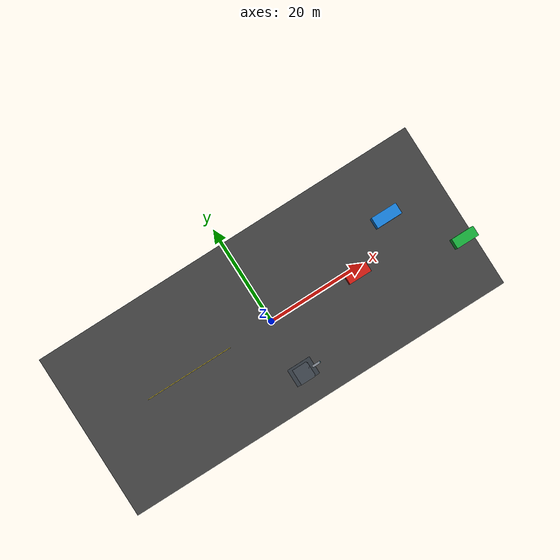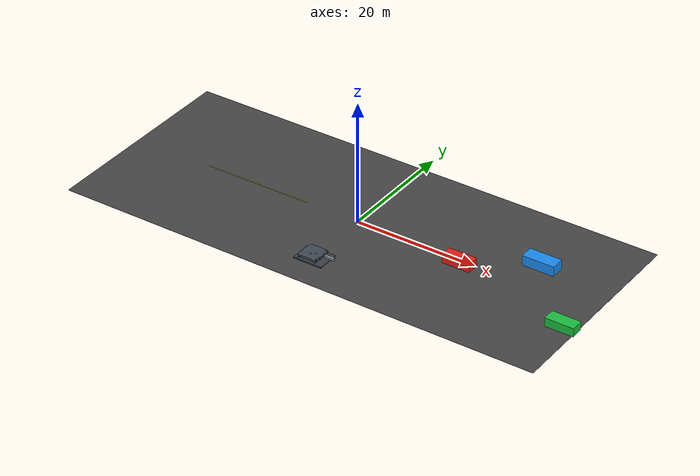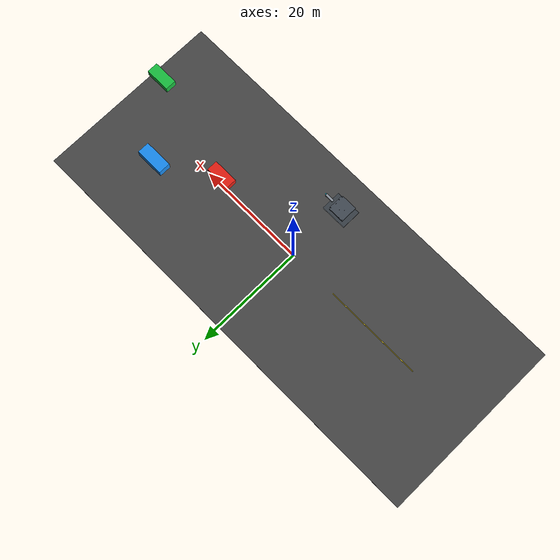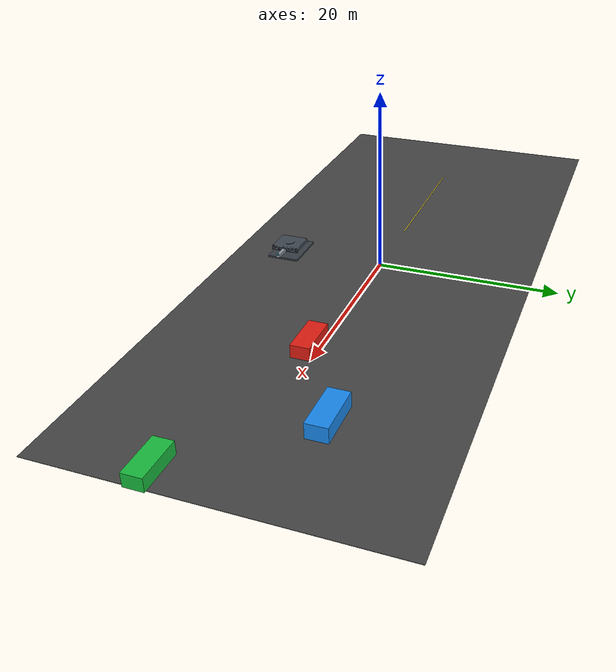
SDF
<sdf version="1.10">
 <world name="mantis_tracking_world">
  <physics name="1ms" type="ignored">
   <max_step_size>0.001</max_step_size>
   <real_time_factor>1.0</real_time_factor>
  </physics>
  <plugin filename="gz-sim-physics-system" name="gz::sim::systems::Physics"/>
  <plugin filename="gz-sim-user-commands-system" name="gz::sim::systems::UserCommands"/>
  <plugin filename="gz-sim-scene-broadcaster-system" name="gz::sim::systems::SceneBroadcaster"/>
  <plugin filename="gz-sim-sensors-system" name="gz::sim::systems::Sensors">
   <render_engine>ogre2</render_engine>
  </plugin>
  <light type="directional" name="sun">
   <pose>0 0 30 0 0 0</pose>
   <diffuse>0.85 0.85 0.82 1</diffuse>
   <specular>0.25 0.25 0.25 1</specular>
   <direction>-0.4 0.25 -0.88</direction>
  </light>
  <model name="road">
   <static>true</static>
   <link name="link">
    <collision name="collision"><geometry><box><size>80 34 0.04</size></box></geometry></collision>
    <visual name="asphalt">
     <geometry><box><size>80 34 0.04</size></box></geometry>
     <material><ambient>0.22 0.22 0.22 1</ambient><diffuse>0.28 0.28 0.28 1</diffuse></material>
    </visual>
    <visual name="lane_1">
     <pose>10 0 0.035 0 0 0</pose>
     <geometry><box><size>18 0.12 0.012</size></box></geometry>
     <material><ambient>0.95 0.84 0.18 1</ambient><diffuse>0.95 0.84 0.18 1</diffuse></material>
    </visual>
    <visual name="lane_2">
     <pose>-18 0 0.035 0 0 0</pose>
     <geometry><box><size>18 0.12 0.012</size></box></geometry>
     <material><ambient>0.95 0.84 0.18 1</ambient><diffuse>0.95 0.84 0.18 1</diffuse></material>
    </visual>
   </link>
  </model>
  <model name="mantis">
   <pose>0 -11 0.08 0 0 0</pose>
   <link name="base_link">
    <inertial><mass>80</mass><inertia><ixx>30</ixx><iyy>30</iyy><izz>30</izz></inertia></inertial>
    <collision name="base_collision"><geometry><box><size>4.8 3.6 0.28</size></box></geometry></collision>
    <visual name="base_visual">
     <geometry><box><size>4.8 3.6 0.28</size></box></geometry>
     <material><ambient>0.16 0.18 0.20 1</ambient><diffuse>0.22 0.25 0.28 1</diffuse></material>
    </visual>
   </link>
   <link name="pan_link">
    <pose>0 0 0.48 0 0 0</pose>
    <inertial><mass>35</mass><inertia><ixx>12</ixx><iyy>12</iyy><izz>12</izz></inertia></inertial>
    <visual name="mantis_stl_reference">
     <pose>-0.35 0.6 -0.18 0 0 0</pose>
     <geometry>
      <mesh>
       <uri>file:///home/sanju/MANTIS_PAINTER/models/mantis/meshes/MANTIS.stl</uri>
       <scale>0.34 0.34 0.34</scale>
      </mesh>
     </geometry>
     <material><ambient>0.18 0.20 0.23 1</ambient><diffuse>0.26 0.29 0.33 1</diffuse></material>
    </visual>
    <collision name="body_collision">
     <pose>0.1 0 0.34 0 0 0</pose>
     <geometry><box><size>2.8 2.0 0.9</size></box></geometry>
    </collision>
   </link>
   <joint name="pan_joint" type="revolute">
    <parent>base_link</parent>
    <child>pan_link</child>
    <axis>
     <xyz>0 0 1</xyz>
     <limit><lower>-1.5708</lower><upper>1.5708</upper><effort>500</effort><velocity>1.2</velocity></limit>
    </axis>
   </joint>
   <link name="tilt_link">
    <pose>2.0 0 0.86 0 0 0</pose>
    <inertial><mass>9</mass><inertia><ixx>2</ixx><iyy>2</iyy><izz>2</izz></inertia></inertial>
    <visual name="nose_visual">
     <pose>0.72 0 0 0 1.5708 0</pose>
     <geometry><box><size>0.32 0.42 1.65</size></box></geometry>
     <material><ambient>0.42 0.45 0.48 1</ambient><diffuse>0.55 0.58 0.62 1</diffuse></material>
    </visual>
    <visual name="camera_marker">
     <pose>1.52 0 0.24 0 0 0</pose>
     <geometry><box><size>0.18 0.18 0.12</size></box></geometry>
     <material><ambient>0.0 0.45 0.55 1</ambient><diffuse>0.0 0.65 0.75 1</diffuse></material>
    </visual>
    <sensor name="nose_camera" type="camera">
     <pose>1.58 0 0.25 0 0 0</pose>
     <topic>/mantis/nose_camera/image</topic>
     <update_rate>30</update_rate>
     <camera>
      <horizontal_fov>1.012</horizontal_fov>
      <image><width>1280</width><height>720</height><format>R8G8B8</format></image>
      <clip><near>0.1</near><far>120</far></clip>
     </camera>
    </sensor>
   </link>
   <joint name="tilt_joint" type="revolute">
    <parent>pan_link</parent>
    <child>tilt_link</child>
    <pose>1.45 0 0.86 0 0 0</pose>
    <axis>
     <xyz>0 1 0</xyz>
     <limit><lower>-0.4363</lower><upper>0.7854</upper><effort>180</effort><velocity>1.0</velocity></limit>
    </axis>
   </joint>
   <plugin filename="gz-sim-joint-position-controller-system" name="gz::sim::systems::JointPositionController">
    <joint_name>pan_joint</joint_name>
    <topic>/mantis/pan_cmd</topic>
    <p_gain>8.0</p_gain>
   </plugin>
   <plugin filename="gz-sim-joint-position-controller-system" name="gz::sim::systems::JointPositionController">
    <joint_name>tilt_joint</joint_name>
    <topic>/mantis/tilt_cmd</topic>
    <p_gain>7.0</p_gain>
   </plugin>
  </model>
  <model name="bright_car_marker_front">
   <static>true</static>
   <pose>18 -1 0.8 0 0 0</pose>
   <link name="link">
    <visual name="body">
     <geometry><box><size>4.6 2.0 1.4</size></box></geometry>
     <material><ambient>0.9 0.12 0.08 1</ambient><diffuse>0.9 0.12 0.08 1</diffuse></material>
    </visual>
   </link>
  </model>
  <model name="bright_car_marker_right">
   <static>true</static>
   <pose>28 5 0.9 0 0 0</pose>
   <link name="link">
    <visual name="body">
     <geometry><box><size>5.2 2.2 1.6</size></box></geometry>
     <material><ambient>0.1 0.55 0.95 1</ambient><diffuse>0.1 0.55 0.95 1</diffuse></material>
    </visual>
   </link>
  </model>
  <model name="bright_car_marker_far">
   <static>true</static>
   <pose>38 -6 0.8 0 0 0</pose>
   <link name="link">
    <visual name="body">
     <geometry><box><size>4.6 2.0 1.4</size></box></geometry>
     <material><ambient>0.1 0.75 0.25 1</ambient><diffuse>0.1 0.75 0.25 1</diffuse></material>
    </visual>
   </link>
  </model>
 </world>
</sdf>
